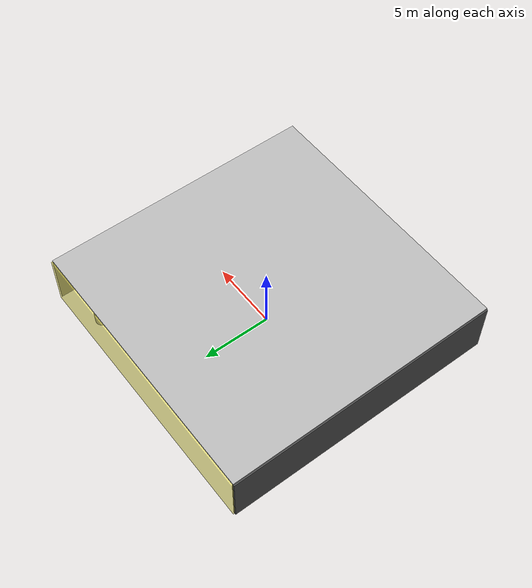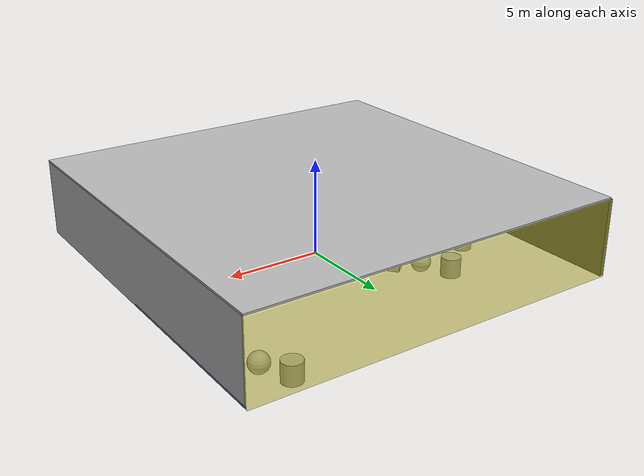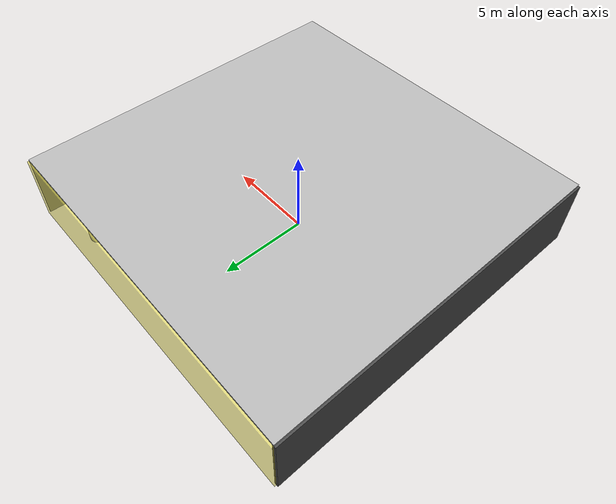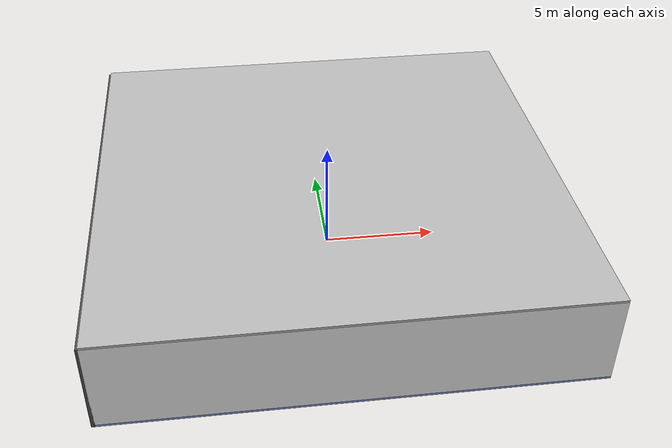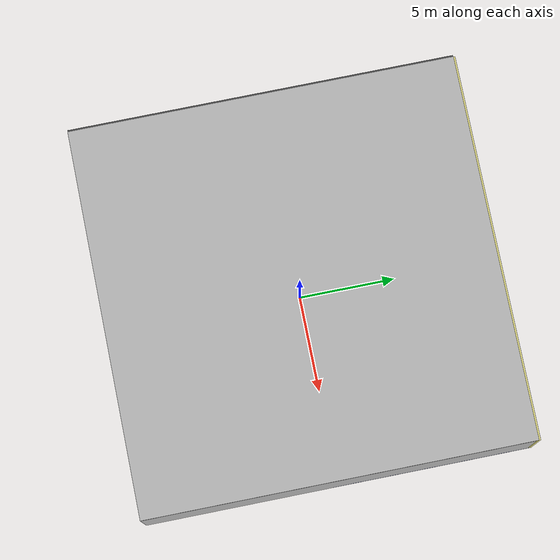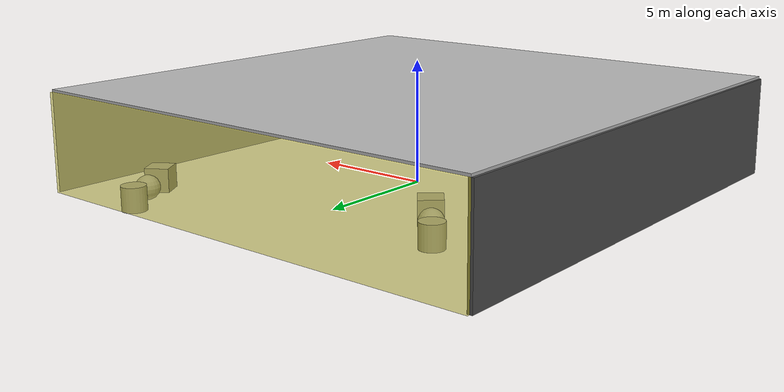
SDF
<sdf version="1.4">
 <world name="default">
  <physics type="ode">
   <max_step_size>0.001</max_step_size>
   <real_time_factor>1</real_time_factor>
   <real_time_update_rate>1000</real_time_update_rate>
   <gravity>0 0 -9.8</gravity>
  </physics>
  <scene><ambient>0.4 0.4 0.4 1</ambient><background>0.7 0.7 0.7 1</background><shadows>1</shadows></scene>
  <model name="Surrounding">
   <static>1</static>
   <link name="Ceiling">
    <collision name="Ceiling_Collision"><geometry><box><size>20 20 0.1</size></box></geometry></collision>
    <visual name="Ceiling_Visual">
     <geometry><box><size>20 20 0.1</size></box></geometry>
     <material>
      <script><uri>file://media/materials/scripts/gazebo.material</uri><name>Gazebo/LightOn</name></script>
     </material>
    </visual>
    <pose>0 0 4.05 0 0 0</pose>
   </link>
   <link name="Wall_South">
    <collision name="Wall_South_Collision">
     <geometry><box><size>20 0 4</size></box></geometry>
     <pose>0 0 2 0 -0 0</pose>
    </collision>
    <visual name="Wall_South_Visual">
     <pose>0 0 2 0 -0 0</pose>
     <geometry><box><size>20 0 4</size></box></geometry>
     <material>
      <script><uri>file://media/materials/scripts/gazebo.material</uri><name>Gazebo/WhiteGlow</name></script>
     </material>
    </visual>
    <velocity_decay><linear>0</linear><angular>0</angular></velocity_decay>
    <pose>0 -10 0 0 -0 0</pose>
   </link>
   <link name="Wall_East">
    <collision name="Wall_21_Collision">
     <geometry><box><size>20 0 4</size></box></geometry>
     <pose>0 0 2 0 -0 0</pose>
    </collision>
    <visual name="Wall_21_Visual">
     <pose>0 0 2 0 -0 0</pose>
     <geometry><box><size>20 0 4</size></box></geometry>
     <material>
      <script><uri>file://media/materials/scripts/gazebo.material</uri><name>Gazebo/CloudySky</name></script>
     </material>
    </visual>
    <velocity_decay><linear>0</linear><angular>0</angular></velocity_decay>
    <pose>10 0 0 0 -0 1.5708</pose>
   </link>
   <link name="Wall_North">
    <collision name="Wall_22_Collision">
     <geometry><box><size>20 0.2 4</size></box></geometry>
     <pose>0 0 2 0 -0 0</pose>
    </collision>
    <visual name="Wall_22_Visual">
     <pose>0 0 2 0 -0 0</pose>
     <geometry><box><size>20 0.2 4</size></box></geometry>
     <material>
      <script>
       <uri>file://media/materials/scripts/gazebo.material</uri>
       <name>Gazebo/YellowTransparent</name>
      </script>
     </material>
    </visual>
    <velocity_decay><linear>0</linear><angular>0</angular></velocity_decay>
    <pose>0 10 0 0 -0 0</pose>
   </link>
   <link name="Wall_West">
    <collision name="Wall_23_Collision">
     <geometry><box><size>20 0.2 4</size></box></geometry>
     <pose>0 0 2 0 -0 0</pose>
    </collision>
    <visual name="Wall_23_Visual">
     <pose>0 0 2 0 -0 0</pose>
     <geometry><box><size>20 0.2 4</size></box></geometry>
     <material>
      <script><uri>file://media/materials/scripts/gazebo.material</uri><name>Gazebo/Road</name></script>
     </material>
    </visual>
    <velocity_decay><linear>0</linear><angular>0</angular></velocity_decay>
    <pose>-10 0 0 0 0 -1.5708</pose>
   </link>
   <link name="Ground_link">
    <collision name="collision">
     <pose>0 0 .05 0 -0 0</pose>
     <geometry><box><size>20 20 0.1</size></box></geometry>
    </collision>
    <visual name="visual">
     <pose>0 0 .05 0 -0 0</pose>
     <geometry><box><size>20 20 0.1</size></box></geometry>
     <material>
      <script><uri>file://media/materials/scripts/gazebo.material</uri><name>Gazebo/BlueTransparent</name></script>
     </material>
    </visual>
   </link>
   <static>1</static>
  </model>
  <spherical_coordinates>
   <surface_model>EARTH_WGS84</surface_model>
   <latitude_deg>0</latitude_deg>
   <longitude_deg>0</longitude_deg>
   <elevation>0</elevation>
   <heading_deg>0</heading_deg>
  </spherical_coordinates>
  <light name="lightball_0" type="diffuse">
   <diffuse>0.8 0.8 0.8 1</diffuse>
   <specular>0.2 0.2 0.2 1</specular>
   <attenuation>
    <range>100</range>
    <constant>0.7</constant>
    <linear>0.01</linear>
    <quadratic>0.001</quadratic>
   </attenuation>
   <direction>-0.5 0.1 -0.9</direction>
   <pose>9.11424306576 -0.891199335938 1.67098688933 0 0 0</pose>
  </light>
  <light name="lightball_1" type="diffuse">
   <diffuse>0.8 0.8 0.8 1</diffuse>
   <specular>0.2 0.2 0.2 1</specular>
   <attenuation>
    <range>100</range>
    <constant>0.7</constant>
    <linear>0.01</linear>
    <quadratic>0.001</quadratic>
   </attenuation>
   <direction>-0.5 0.1 -0.9</direction>
   <pose>-3.46517987747 -2.98206977979 3.28828991246 0 0 0</pose>
  </light>
  <light name="lightball_2" type="diffuse">
   <diffuse>0.8 0.8 0.8 1</diffuse>
   <specular>0.2 0.2 0.2 1</specular>
   <attenuation>
    <range>100</range>
    <constant>0.7</constant>
    <linear>0.01</linear>
    <quadratic>0.001</quadratic>
   </attenuation>
   <direction>-0.5 0.1 -0.9</direction>
   <pose>-2.53321036862 -6.90999849048 2.68155372914 0 0 0</pose>
  </light>
  <light name="lightball_3" type="diffuse">
   <diffuse>0.8 0.8 0.8 1</diffuse>
   <specular>0.2 0.2 0.2 1</specular>
   <attenuation>
    <range>100</range>
    <constant>0.7</constant>
    <linear>0.01</linear>
    <quadratic>0.001</quadratic>
   </attenuation>
   <direction>-0.5 0.1 -0.9</direction>
   <pose>1.44658341629 4.97044455082 3.4098830768 0 0 0</pose>
  </light>
  <light name="lightball_4" type="diffuse">
   <diffuse>0.8 0.8 0.8 1</diffuse>
   <specular>0.2 0.2 0.2 1</specular>
   <attenuation>
    <range>100</range>
    <constant>0.7</constant>
    <linear>0.01</linear>
    <quadratic>0.001</quadratic>
   </attenuation>
   <direction>-0.5 0.1 -0.9</direction>
   <pose>-9.49942975013 3.27111465175 3.25507788114 0 0 0</pose>
  </light>
  <light name="lightball_5" type="diffuse">
   <diffuse>0.8 0.8 0.8 1</diffuse>
   <specular>0.2 0.2 0.2 1</specular>
   <attenuation>
    <range>100</range>
    <constant>0.7</constant>
    <linear>0.01</linear>
    <quadratic>0.001</quadratic>
   </attenuation>
   <direction>-0.5 0.1 -0.9</direction>
   <pose>7.82480287763 6.76106373157 2.81287727031 0 0 0</pose>
  </light>
  <light name="lightball_6" type="diffuse">
   <diffuse>0.8 0.8 0.8 1</diffuse>
   <specular>0.2 0.2 0.2 1</specular>
   <attenuation>
    <range>100</range>
    <constant>0.7</constant>
    <linear>0.01</linear>
    <quadratic>0.001</quadratic>
   </attenuation>
   <direction>-0.5 0.1 -0.9</direction>
   <pose>8.38456384485 1.4754772574 0.951005005666 0 0 0</pose>
  </light>
  <light name="lightball_7" type="diffuse">
   <diffuse>0.8 0.8 0.8 1</diffuse>
   <specular>0.2 0.2 0.2 1</specular>
   <attenuation>
    <range>100</range>
    <constant>0.7</constant>
    <linear>0.01</linear>
    <quadratic>0.001</quadratic>
   </attenuation>
   <direction>-0.5 0.1 -0.9</direction>
   <pose>6.7112242186 5.63477354131 2.9019243729 0 0 0</pose>
  </light>
  <light name="lightball_8" type="diffuse">
   <diffuse>0.8 0.8 0.8 1</diffuse>
   <specular>0.2 0.2 0.2 1</specular>
   <attenuation>
    <range>100</range>
    <constant>0.7</constant>
    <linear>0.01</linear>
    <quadratic>0.001</quadratic>
   </attenuation>
   <direction>-0.5 0.1 -0.9</direction>
   <pose>7.40335472624 -1.34587081685 3.75640004988 0 0 0</pose>
  </light>
  <include>
   <uri>model://textured_shapes</uri>
   <pose>-6.78754537331 1.55506544288 0 0 0 0.394079723537</pose>
  </include>
  <include>
   <uri>model://robocup_3Dsim_goal</uri>
   <pose>-4.57355558766 -1.76207408351 0 0 0 0.459420414789</pose>
  </include>
  <include><uri>model://cabinet</uri><pose>-4.38810737334 1.15961629916 0 0 0 0.809073552718</pose></include>
  <include>
   <uri>model://textured_shapes</uri>
   <pose>-3.76583978757 3.85213159707 0 0 0 0.684254125436</pose>
  </include>
  <include>
   <uri>model://construction_cone</uri>
   <pose>-1.40404212185 -4.41409587562 0 0 0 3.10453456687</pose>
  </include>
  <include><uri>model://cabinet</uri><pose>4.46539795259 -4.20764261178 0 0 0 0.521619596127</pose></include>
  <include>
   <uri>model://textured_shapes</uri>
   <pose>7.86284276936 7.39359796759 0 0 0 0.567955574793</pose>
  </include>
 </world>
</sdf>

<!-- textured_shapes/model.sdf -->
<sdf version="1.6">
  <model name="textured_shapes">
    <pose>0 0 0.5 0 0 0</pose>
    <link name="box">
      <pose>0 -1.5 0 0 0 0</pose>
      <collision name="collision">
        <geometry>
          <box>
            <size>1 1 1</size>
          </box>
        </geometry>
      </collision>
      <visual name="visual">
        <geometry>
          <box>
            <size>1 1 1</size>
          </box>
        </geometry>
        <material>
          <script>
            <uri>model://../model_source/models/textured_shapes/materials/scripts</uri>
            <uri>model://../model_source/models/textured_shapes/materials/textures</uri>
            <name>TexturedShape/Squares</name>
          </script>
        </material>
      </visual>
    </link>
    <link name="sphere">
      <collision name="collision">
        <geometry>
          <sphere>
            <radius>0.5</radius>
          </sphere>
        </geometry>
      </collision>
      <visual name="visual">
        <geometry>
          <sphere>
            <radius>0.5</radius>
          </sphere>
        </geometry>
        <material>
          <script>
            <uri>model://../model_source/models/textured_shapes/materials/scripts</uri>
            <uri>model://../model_source/models/textured_shapes/materials/textures</uri>
            <name>TexturedShape/Squares</name>
          </script>
        </material>
      </visual>
    </link>
    <link name="cylinder">
      <pose>0 1.5 0 0 0 0</pose>
      <collision name="collision">
        <geometry>
          <cylinder>
            <radius>0.5</radius>
            <length>1</length>
          </cylinder>
        </geometry>
      </collision>
      <visual name="visual">
        <geometry>
          <cylinder>
            <radius>0.5</radius>
            <length>1</length>
          </cylinder>
        </geometry>
        <material>
          <script>
            <uri>model://../model_source/models/textured_shapes/materials/scripts</uri>
            <uri>model://../model_source/models/textured_shapes/materials/textures</uri>
            <name>TexturedShape/Squares</name>
          </script>
        </material>
      </visual>
    </link>
  </model>
</sdf>

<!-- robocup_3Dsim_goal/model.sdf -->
<sdf version="1.5">
  <model name="robocup_3d_goal">
    <static>true</static>
    <link name="left_post">
      <pose>0 1.05 0.45 0 0 0</pose>
      <collision name="collision">
        <geometry>
          <cylinder>
            <radius>0.05</radius>
            <length>0.9</length>
          </cylinder>
        </geometry>
      </collision>
      <visual name="visual">
        <geometry>
          <cylinder>
            <radius>0.05</radius>
            <length>0.9</length>
          </cylinder>
        </geometry>
        <material>
          <script>
            <uri>file://media/materials/scripts/gazebo.material</uri>
            <name>Gazebo/ZincYellow</name>
          </script>
        </material>
      </visual>
    </link>
    <link name="left_support_horiz_lower">
      <pose>0.30 1.05 0.01 0 0 0</pose>
      <collision name="collision">
        <geometry>
          <box>
            <size>0.50 0.02 0.02</size>
          </box>
        </geometry>
      </collision>
      <visual name="visual">
        <geometry>
          <box>
            <size>0.50 0.02 0.02</size>
          </box>
        </geometry>
        <material>
          <script>
            <uri>file://media/materials/scripts/gazebo.material</uri>
            <name>Gazebo/White</name>
          </script>
        </material>
      </visual>
    </link>
    <link name="left_support_horiz_upper">
      <pose>0.30 1.05 0.79 0 0 0</pose>
      <collision name="collision">
        <geometry>
          <box>
            <size>0.50 0.02 0.02</size>
          </box>
        </geometry>
      </collision>
      <visual name="visual">
        <geometry>
          <box>
            <size>0.50 0.02 0.02</size>
          </box>
        </geometry>
        <material>
          <script>
            <uri>file://media/materials/scripts/gazebo.material</uri>
            <name>Gazebo/White</name>
          </script>
        </material>
      </visual>
    </link>
    <link name="left_support_vertical">
      <pose>0.56 1.05 0.4 0 1.5708 0</pose>
      <collision name="collision">
        <geometry>
          <box>
            <size>0.80 0.02 0.02</size>
          </box>
        </geometry>
      </collision>
      <visual name="visual">
        <geometry>
          <box>
            <size>0.80 0.02 0.02</size>
          </box>
        </geometry>
        <material>
          <script>
            <uri>file://media/materials/scripts/gazebo.material</uri>
            <name>Gazebo/White</name>
          </script>
        </material>
      </visual>
    </link>
    <link name="right_support_horiz_lower">
      <pose>0.30 -1.05 0.01 0 0 0</pose>
      <collision name="collision">
        <geometry>
          <box>
            <size>0.50 0.02 0.02</size>
          </box>
        </geometry>
      </collision>
      <visual name="visual">
        <geometry>
          <box>
            <size>0.50 0.02 0.02</size>
          </box>
        </geometry>
        <material>
          <script>
            <uri>file://media/materials/scripts/gazebo.material</uri>
            <name>Gazebo/White</name>
          </script>
        </material>
      </visual>
    </link>
    <link name="right_support_horiz_upper">
      <pose>0.30 -1.05 0.79 0 0 0</pose>
      <collision name="collision">
        <geometry>
          <box>
            <size>0.50 0.02 0.02</size>
          </box>
        </geometry>
      </collision>
      <visual name="visual">
        <geometry>
          <box>
            <size>0.50 0.02 0.02</size>
          </box>
        </geometry>
        <material>
          <script>
            <uri>file://media/materials/scripts/gazebo.material</uri>
            <name>Gazebo/White</name>
          </script>
        </material>
      </visual>
    </link>
    <link name="right_support_vertical">
      <pose>0.56 -1.05 0.4 0 1.5708 0</pose>
      <collision name="collision">
        <geometry>
          <box>
            <size>0.80 0.02 0.02</size>
          </box>
        </geometry>
      </collision>
      <visual name="visual">
        <geometry>
          <box>
            <size>0.80 0.02 0.02</size>
          </box>
        </geometry>
        <material>
          <script>
            <uri>file://media/materials/scripts/gazebo.material</uri>
            <name>Gazebo/White</name>
          </script>
        </material>
      </visual>
    </link>
    <link name="center_support_horiz_lower">
      <pose>0.56 0 0.01 0 1.5708 0</pose>
      <collision name="collision">
        <geometry>
          <box>
            <size>0.02 2.08 0.02</size>
          </box>
        </geometry>
      </collision>
      <visual name="visual">
        <geometry>
          <box>
            <size>0.02 2.08 0.02</size>
          </box>
        </geometry>
        <material>
          <script>
            <uri>file://media/materials/scripts/gazebo.material</uri>
            <name>Gazebo/White</name>
          </script>
        </material>
      </visual>
    </link>
    <link name="center_support_horiz_upper">
      <pose>0.56 0 0.79 0 1.5708 0</pose>
      <collision name="collision">
        <geometry>
          <box>
            <size>0.02 2.08 0.02</size>
          </box>
        </geometry>
      </collision>
      <visual name="visual">
        <geometry>
          <box>
            <size>0.02 2.08 0.02</size>
          </box>
        </geometry>
        <material>
          <script>
            <uri>file://media/materials/scripts/gazebo.material</uri>
            <name>Gazebo/White</name>
          </script>
        </material>
      </visual>
    </link>
    <link name="right_post">
      <pose>0 -1.05 0.45 0 0 0</pose>
      <collision name="collision">
        <geometry>
          <cylinder>
            <radius>0.05</radius>
            <length>0.9</length>
          </cylinder>
        </geometry>
      </collision>
      <visual name="visual">
        <geometry>
          <cylinder>
            <radius>0.05</radius>
            <length>0.9</length>
          </cylinder>
        </geometry>
        <material>
          <script>
            <uri>file://media/materials/scripts/gazebo.material</uri>
            <name>Gazebo/ZincYellow</name>
          </script>
        </material>
      </visual>
    </link>
    <link name="crossbar">
      <pose>0 0 0.85 1.57 1.57 0</pose>
      <collision name="collision">
        <geometry>
          <cylinder>
            <radius>0.05</radius>
            <length>2.0</length>
          </cylinder>
        </geometry>
      </collision>
      <visual name="visual">
        <geometry>
          <cylinder>
            <radius>0.05</radius>
            <length>2.0</length>
          </cylinder>
        </geometry>
        <material>
          <script>
            <uri>file://media/materials/scripts/gazebo.material</uri>
            <name>Gazebo/ZincYellow</name>
          </script>
        </material>
      </visual>
    </link>
    <link name="center_net">
      <pose>0.56 0 0.40 0 0 0</pose>
      <collision name="collision">
        <geometry>
          <box>
            <size>0.01 2.1 0.80</size>
          </box>
        </geometry>
      </collision>
      <visual name="visual">
        <geometry>
          <box>
            <size>0.01 2.1 0.80</size>
          </box>
        </geometry>
        <material>
          <script>
            <uri>model://../model_source/models/robocup09_spl_field/materials/scripts/</uri>
            <uri>model://../model_source/models/robocup09_spl_field/materials/textures/</uri>
            <name>RoboCup/Net</name>
          </script>
        </material>
      </visual>
    </link>
    <link name="left_net">
      <pose>0.30 1.05 0.40 0 0 0</pose>
      <collision name="collision">
        <geometry>
          <box>
            <size>0.50 0.01 0.76</size>
          </box>
        </geometry>
      </collision>
      <visual name="visual">
        <geometry>
          <box>
            <size>0.50 0.01 0.76</size>
          </box>
        </geometry>
        <material>
          <script>
            <uri>model://../model_source/models/robocup09_spl_field/materials/scripts/</uri>
            <uri>model://../model_source/models/robocup09_spl_field/materials/textures/</uri>
            <name>RoboCup/Net</name>
          </script>
        </material>
      </visual>
    </link>
    <link name="right_net">
      <pose>0.30 -1.05 0.40 0 0 0</pose>
      <collision name="collision">
        <geometry>
          <box>
            <size>0.50 0.01 0.76</size>
          </box>
        </geometry>
      </collision>
      <visual name="visual">
        <geometry>
          <box>
            <size>0.50 0.01 0.76</size>
          </box>
        </geometry>
        <material>
          <script>
            <uri>model://../model_source/models/robocup09_spl_field/materials/scripts/</uri>
            <uri>model://../model_source/models/robocup09_spl_field/materials/textures/</uri>
            <name>RoboCup/Net</name>
          </script>
        </material>
      </visual>
    </link>
  </model>
</sdf>

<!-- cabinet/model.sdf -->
<sdf version="1.5">
  <model name="cabinet">
    <static>true</static>
    <link name="cabinet_bottom_plate">
      <inertial>
        <pose>0 0 -1 0 0 0</pose>
        <inertia>
          <ixx>2.050000</ixx>
          <ixy>0</ixy>
          <ixz>0</ixz>
          <iyy>2.050000</iyy>
          <iyz>0</iyz>
          <izz>2.050000</izz>
        </inertia>
        <mass>25.000000</mass>
      </inertial>
      <collision name="cabinet_bottom_plate_geom">
        <pose>0 0 0.010000 0 0 0</pose>
        <geometry>
          <box>
            <size>0.450000 0.450000 0.020000</size>
          </box>
        </geometry>
      </collision>
      <visual name="cabinet_bottom_plate_geom_visual">
        <pose>0 0 0.010000 0 0 0</pose>
        <geometry>
          <box>
            <size>0.450000 0.450000 0.020000</size>
          </box>
        </geometry>
        <material>
          <script>
            <uri>model://media/materials/scripts/gazebo.material</uri>
            <name>Gazebo/Wood</name>
          </script>
        </material>
      </visual>
      <collision name="cabinet_bottom_plate_geom_cabinet_back_plate">
        <pose>0.235000 0 0.510000 0 0 0</pose>
        <geometry>
          <box>
            <size>0.020000 0.450000 1.020000</size>
          </box>
        </geometry>
      </collision>
      <visual name="cabinet_bottom_plate_geom_cabinet_back_plate_visual">
        <pose>0.235000 0 0.510000 0 0 0</pose>
        <geometry>
          <box>
            <size>0.020000 0.450000 1.020000</size>
          </box>
        </geometry>
        <material>
          <script>
            <uri>model://media/materials/scripts/gazebo.material</uri>
            <name>Gazebo/Wood</name>
          </script>
        </material>
      </visual>
      <collision name="cabinet_bottom_plate_geom_cabinet_left_plate">
        <pose>0 0.235000 0.510000 0 0 0</pose>
        <geometry>
          <box>
            <size>0.450000 0.020000 1.020000</size>
          </box>
        </geometry>
      </collision>
      <visual name="cabinet_bottom_plate_geom_cabinet_left_plate_visual">
        <pose>0 0.235000 0.510000 0 0 0</pose>
        <geometry>
          <box>
            <size>0.450000 0.020000 1.020000</size>
          </box>
        </geometry>
        <material>
          <script>
            <uri>model://media/materials/scripts/gazebo.material</uri>
            <name>Gazebo/Wood</name>
          </script>
        </material>
      </visual>
      <collision name="cabinet_bottom_plate_geom_cabinet_middle_plate">
        <pose>0 0 0.510000 0 0 0</pose>
        <geometry>
          <box>
            <size>0.450000 0.450000 0.020000</size>
          </box>
        </geometry>
      </collision>
      <visual name="cabinet_bottom_plate_geom_cabinet_middle_plate_visual">
        <pose>0 0 0.510000 0 0 0</pose>
        <geometry>
          <box>
            <size>0.450000 0.450000 0.020000</size>
          </box>
        </geometry>
        <material>
          <script>
            <uri>model://media/materials/scripts/gazebo.material</uri>
            <name>Gazebo/Wood</name>
          </script>
        </material>
      </visual>
      <collision name="cabinet_bottom_plate_geom_cabinet_right_plate">
        <pose>0 -0.235000 0.510000 0 0 0</pose>
        <geometry>
          <box>
            <size>0.450000 0.020000 1.020000</size>
          </box>
        </geometry>
      </collision>
      <visual name="cabinet_bottom_plate_geom_cabinet_right_plate_visual">
        <pose>0 -0.235000 0.510000 0 0 0</pose>
        <geometry>
          <box>
            <size>0.450000 0.020000 1.020000</size>
          </box>
        </geometry>
        <material>
          <script>
            <uri>model://media/materials/scripts/gazebo.material</uri>
            <name>Gazebo/Wood</name>
          </script>
        </material>
      </visual>
      <collision name="cabinet_bottom_plate_geom_cabinet_top_plate">
        <pose>0 0 1.010000 0 0 0</pose>
        <geometry>
          <box>
            <size>0.450000 0.450000 0.020000</size>
          </box>
        </geometry>
      </collision>
      <visual name="cabinet_bottom_plate_geom_cabinet_top_plate_visual">
        <pose>0 0 1.010000 0 0 0</pose>
        <geometry>
          <box>
            <size>0.450000 0.450000 0.020000</size>
          </box>
        </geometry>
        <material>
          <script>
            <uri>model://media/materials/scripts/gazebo.material</uri>
            <name>Gazebo/Wood</name>
          </script>
        </material>
      </visual>
    </link>
  </model>
</sdf>

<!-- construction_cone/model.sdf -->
<sdf version="1.5">
  <model name="Construction Cone">
    <link name="link">
      <collision name="collision">
        <geometry>
          <mesh>
            <scale>10 10 10</scale>
            <uri>file://isr-testbed/construction_cone/meshes/construction_cone.dae</uri>
          </mesh>
        </geometry>
      </collision>
      <visual name="visual">
        <geometry>
          <mesh>
            <scale>10 10 10</scale>
            <uri>file://isr-testbed/construction_cone/meshes/construction_cone.dae</uri>
          </mesh>
        </geometry>
      </visual>
    </link>
  </model>
</sdf>
